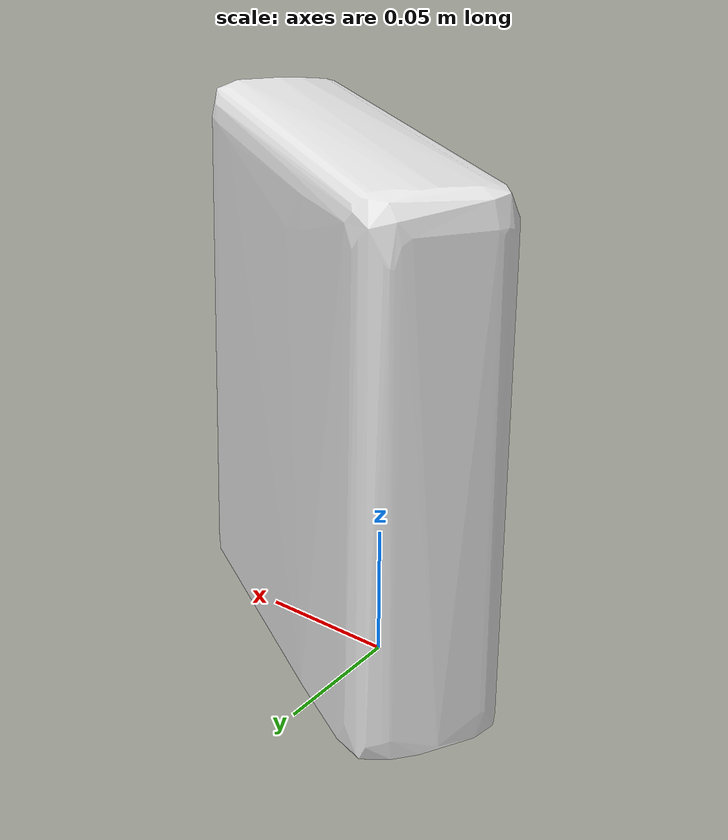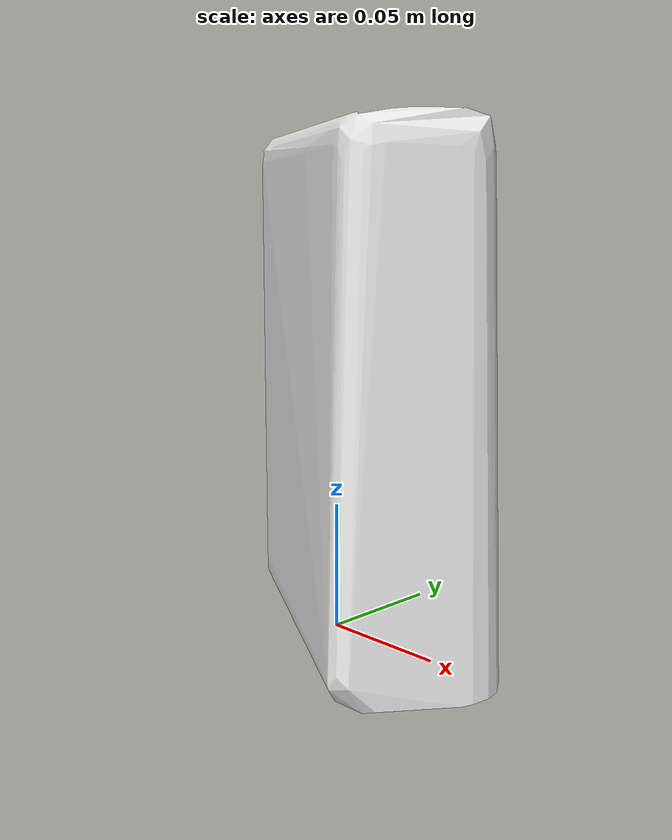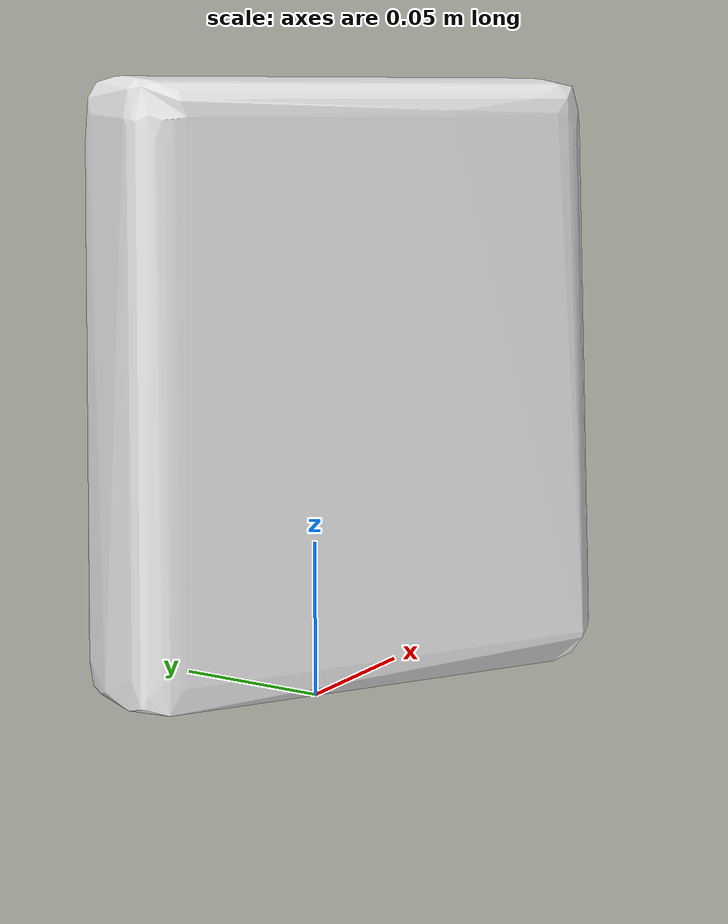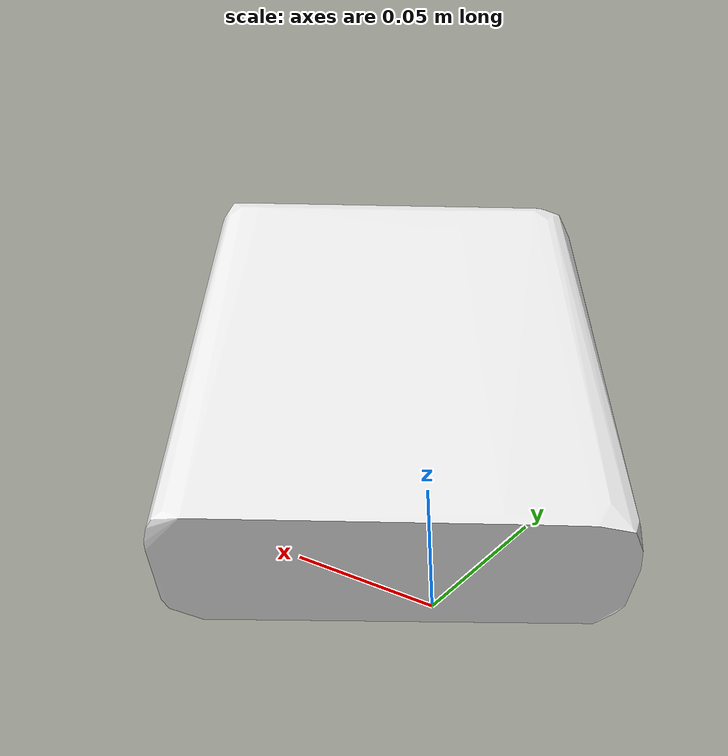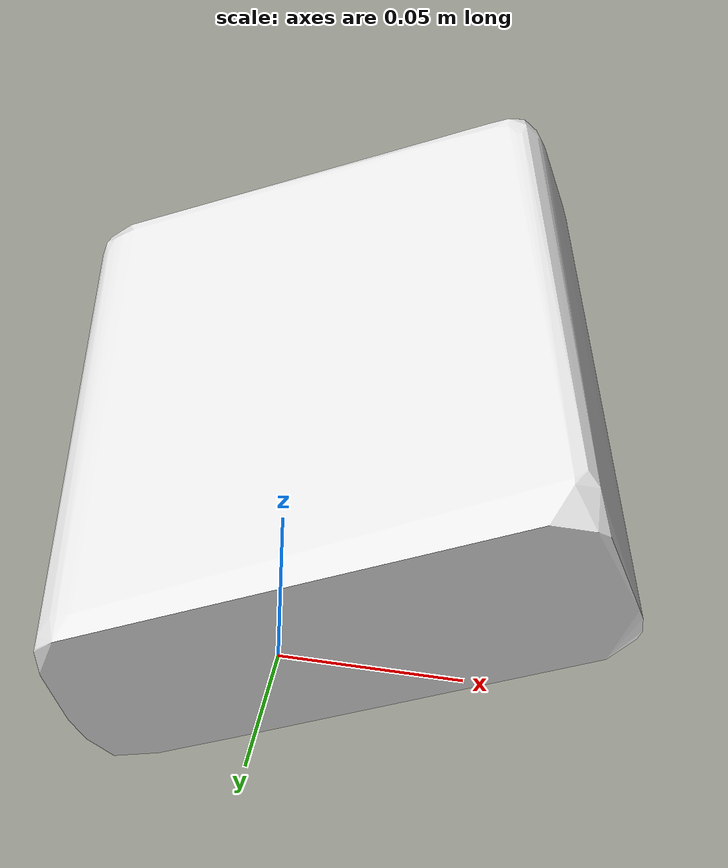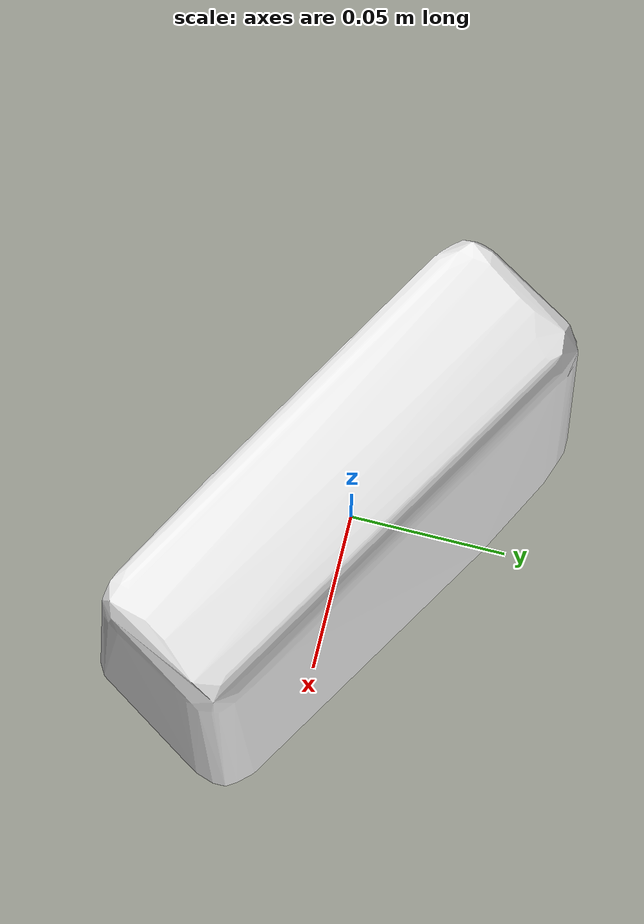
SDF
<?xml version='1.0'?>
<sdf version="1.4">
  <model name="cheez_it_white_cheddar">
    <static>false</static>
    <link name="link">
      <inertial>
        <pose>0.015023166183915727 -0.00027541991030512625 0.09828231838564264 -3.1088551083066394 0.0054750356754556 -2.121654678355992</pose>
        <mass>0.1633816739891262</mass>
        <inertia>
          <ixx>0.0008128855669087415</ixx>
          <ixy>-2.1934894521513443e-19</ixy>
          <ixz>-1.1150613271187979e-20</ixz>
          <iyy>0.0005238816884947548</iyy>
          <iyz>5.165448773745534e-21</iyz>
          <izz>0.0003705499633697254</izz>
        </inertia>
      </inertial>
      <collision name="collision">
        <geometry>
          <mesh>
            <!-- Use a downsampled mesh for collisions -->
            <uri>model:///cheez_it_white_cheddar/cheez_it_white_cheddar_250_collision.obj</uri>
	        </mesh>
        </geometry>
        <surface>
      </surface>
      </collision>
      <visual name="visual">
        <geometry>
          <mesh>
            <uri>model:///cheez_it_white_cheddar/optimized_tsdf_texture_mapped_mesh.obj</uri>
	        </mesh>
        </geometry>
        <material>
          <script>
            <uri>model:///cheez_it_white_cheddar/cheez_it_white_cheddar.material</uri>
            <name>cheez_it_white_cheddar</name>
          </script>
        </material>
      </visual>
    </link>
  </model>
</sdf>
